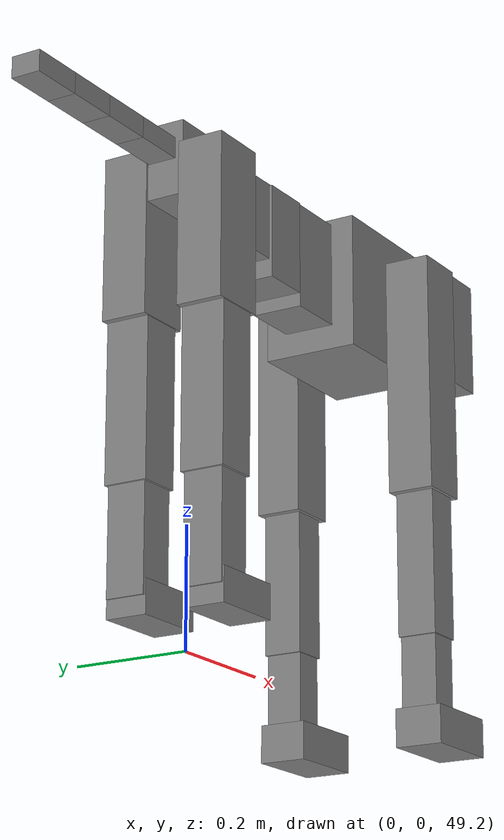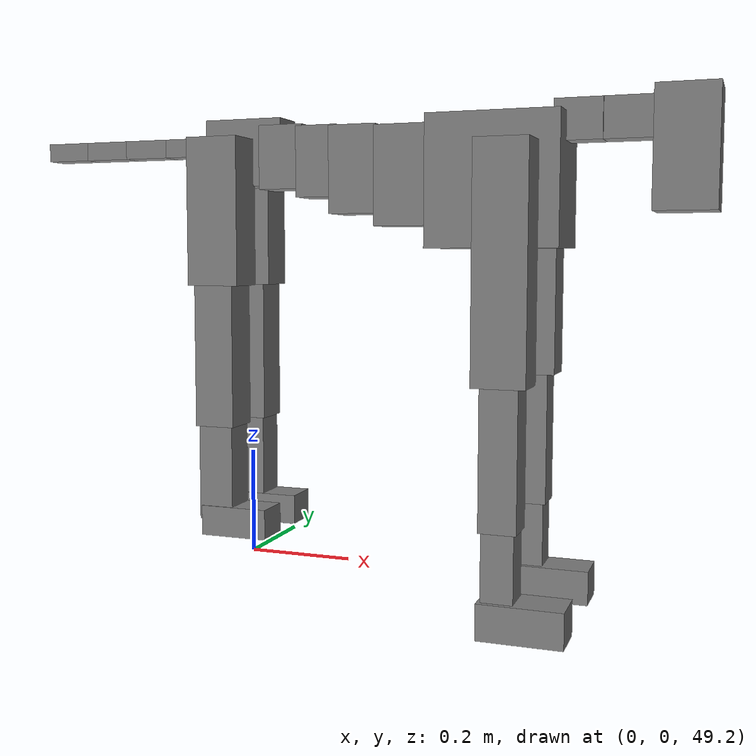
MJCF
<mujoco model="dog">

    <default>
        <joint armature="0.02" stiffness="1" damping="0.2" limited="true" />
        <geom condim="3" friction="1 0.05 0.05" margin="0.01" />
        <motor ctrllimited="true" ctrlrange="-1.0 1.0" forcelimited="true" gear="50" />
    </default>

    <compiler inertiafromgeom="true" angle="radian" />

    <option timestep="0.016" iterations="50" tolerance="1e-10" solver="Newton" jacobian="dense" cone="pyramidal" />

    <size nconmax="20000" njmax="60000" nstack="5000000" />
    <visual>
        <map force="0.1" zfar="30" />
        <rgba haze="0.15 0.25 0.35 1" />
        <quality shadowsize="2048" />
        <global offwidth="800" offheight="800" />
    </visual>

    <asset>
        <texture type="skybox" builtin="gradient" rgb1="0.3 0.5 0.7" rgb2="0 0 0" width="512" height="512" />
        <texture name="texplane" type="2d" builtin="checker" rgb1=".2 .3 .4" rgb2=".1 0.15 0.2" width="512" height="512" mark="cross" markrgb=".8 .8 .8" />
        <texture name="texgeom" type="cube" builtin="flat" mark="cross" width="127" height="1278" rgb1="0.8 0.6 0.4" rgb2="0.8 0.6 0.4" markrgb="1 1 1" random="0.01" />

        <material name="matplane" reflectance="0.3" texture="texplane" texrepeat="1 1" texuniform="true" />
        <material name="matgeom" texture="texgeom" texuniform="true" rgba="0.8 0.6 .4 1" />
    </asset>

    <worldbody>
        <geom name="floor" pos="0 0 0" size="0 0 .25" type="plane" material="matplane" condim="3" />

        <light directional="false" diffuse=".2 .2 .2" specular="0 0 0" pos="0 0 5" dir="0 0 -1" castshadow="false" />
        <light mode="targetbodycom" target="torso" directional="false" diffuse=".8 .8 .8" specular="0.3 0.3 0.3" pos="0 0 4.0" dir="0 0 -1" />

        <body name="root" pos="0 0 50">
            <freejoint name="root_1" />
            <geom type="box" pos="0 0 -0.02" size="0.0774  0.0358  0.063" density="2030" />

            <body name="spine1" pos="0.054 0 0">
                <joint name="spine1_y" axis="0 1 0" range="0 0.7" limited="true" />
                <geom type="box" pos="0.02375 0 -0.03" size="0.04375  0.0375  0.05985" density="2030" />

                <body name="spine2" pos="0.0612 0 0">
                    <joint name="spine2_y" axis="0 1 0" range="-0.15 0.15" limited="true" />
                    <geom type="box" pos="0.03555  0  -0.04" size="0.04055  0.039  0.06615" density="2030" />

                    <body name="spine3" pos="0.0730 0 0">
                        <joint name="spine3_y" axis="0 1 0" range="-0.15 0.15" limited="true" />
                        <geom type="box" pos="0.03555  0  -0.057" size="0.04555  0.0445  0.081" density="2030" />

                        <body name="spine4" pos="0.0780 0 0">
                            <joint name="spine4_y" axis="0 1 0" range="-0.15 0.15" limited="true" />
                            <geom type="box" pos="0.05265  0  -0.07" size="0.05265  0.045  0.09135" density="2030" />

                            <body name="torso" pos="0.1082 0 0">
                                <joint name="torso_y" axis="0 1 0" range="-0.15 0.15" limited="true" />
                                <geom type="box" pos="0.11925  0  -0.085" size="0.11925  0.085  0.11745" density="2030" />

                                <body name="neck1" pos="0.2160  0   0.0180">
                                    <joint name="neck1_y" axis="0 1 0" range="-1.2  -1" limited="true" />
                                    <geom type="box" pos="0.0423  0  0" size="0.0423  0.03  0.036" density="2325" />

                                    <body name="neck2" pos="0.0853  0  0">
                                        <joint name="neck2_y" axis="0 1 0" range="0.1  0" limited="true" />
                                        <geom type="box" pos="0.0423  0  0" size="0.0423  0.03  0.036" density="2325" />

                                        <body name="head" pos="0.0853  0  0">
                                            <joint name="head_y" axis="0 1 0" range="-0.3  -0.2" limited="true" />
                                            <geom type="box" pos="0.0531  0  -0.055" size="0.0531  0.06  0.1044" density="4030" />

                                        </body>
                                    </body>
                                </body>

                                <body name="front_shoulder" pos="0.156  0   -0.0480">
                                    <joint name="front_shoulder_y" axis="0 1 0" range="-1 1.5" limited="true" />
                                    <geom type="box" pos="0 0.13 -0.1816" size="0.0474  0.0405  0.2082" density="1158" />
                                    <geom type="box" pos="0 -0.13 -0.1816" size="0.0474  0.0405  0.2082" density="1158" />

                                    <body name="front_elbow" pos="0  0  -0.3631">
                                        <joint name="front_elbow_y" axis="0 1 0" range="-2 0" limited="true" />
                                        <geom type="box" pos="0 0.13 -0.1374" size="0.0334  0.0342  0.1374" density="1081" />
                                        <geom type="box" pos="0 -0.13 -0.1374" size="0.0334  0.0342  0.1374" density="1081" />

                                        <body name="front_wrist" pos="0  0  -0.2748">
                                            <joint name="front_wrist_y" axis="0 1 0" range="-0.2 0" limited="true" />
                                            <geom type="box" pos="0 0.13 -0.0677" size="0.0287  0.0319  0.0809" density="1664" />
                                            <geom type="box" pos="0 -0.13 -0.0677" size="0.0287  0.0319  0.0809" density="1664" />

                                            <body name="front_finger_end" pos="0  0  -0.1355">
                                                <joint name="front_finger_y" axis="0 1 0" range="-0.4 1" limited="true" />
                                                <geom type="box" pos="0.0415  0.13  -0.0176" size="0.0761  0.0415  0.0326" density="1515" />
                                                <geom type="box" pos="0.0415  -0.13  -0.0176" size="0.0761  0.0415  0.0326" density="1515" />

                                            </body>

                                        </body>
                                    </body>
                                </body>

                            </body>
                        </body>
                    </body>
                </body>
            </body>

            <body name="back_hip" pos="-0.03 0 -0.018">
                <joint name="back_hip_y" axis="0 1 0" range="-1.5 0.3" limited="true" />
                <geom type="box" pos="0 0.07 -0.1153" size="0.0510  0.0400  0.1381" density="1154" />
                <geom type="box" pos="0 -0.07 -0.1153" size="0.0510  0.0400  0.1381" density="1154" />

                <body name="back_knee" pos="0  0  -0.2306">
                    <joint name="back_knee_y" axis="0 1 0" range="0 2.8" limited="true" />
                    <geom type="box" pos="0 0.07 -0.1372" size="0.0386  0.0381  0.1528" density="1227" />
                    <geom type="box" pos="0 -0.07 -0.1372" size="0.0386  0.0381  0.1528" density="1227" />

                    <body name="back_ankle" pos="0  0  -0.2744">
                        <joint name="back_ankle_y" axis="0 1 0" range="-2.2 0" limited="true" />
                        <geom type="box" pos="0 0.07 -0.0923" size="0.0339  0.0339  0.1036" density="1284" />
                        <geom type="box" pos="0 -0.07 -0.0923" size="0.0339  0.0339  0.1036" density="1284" />

                        <body name="back_toe_end" pos="0  0  -0.1846">
                            <joint name="back_toe_y" axis="0 1 0" range="-0.4 1" limited="true" />
                            <geom type="box" pos="0.0360  0.07  -0.0136" size="0.0660  0.0360  0.0286" density="1515" />
                            <geom type="box" pos="0.0360  -0.07  -0.0136" size="0.0660  0.0360  0.0286" density="1515" />

                        </body>
                    </body>
                </body>
            </body>

            <body name="tail1" pos="-0.074 0 -0.006">
                <joint name="tail1_y" axis="0 1 0" range="-0.2 0.2" limited="true" />
                <geom type="box" pos="-0.0536  0  0" size="0.045  0.025  0.0175" density="1587" />

                <body name="tail2" pos="-0.09 0 0">
                    <joint name="tail2_y" axis="0 1 0" range="-0.2 0.2" limited="true" />
                    <geom type="box" pos="-0.0536  0  0" size="0.045  0.025  0.0175" density="1587" />

                    <body name="tail3" pos="-0.09 0 0">
                        <joint name="tail3_y" axis="0 1 0" range="-0.2 0.2" limited="true" />
                        <geom type="box" pos="-0.0536  0  0" size="0.045  0.025  0.0175" density="1587" />

                        <body name="tail4" pos="-0.09 0 0">
                            <joint name="tail4_y" axis="0 1 0" range="-0.2 0.2" limited="true" />
                            <geom type="box" pos="-0.0536  0  0" size="0.045  0.025  0.0175" density="1587" />

                        </body>
                    </body>
                </body>
            </body>
        </body>
    </worldbody>

    <actuator>
        <motor joint="spine1_y" forcerange="-150 150     " />
        <motor joint="spine2_y" forcerange="-150 150     " />
        <motor joint="spine3_y" forcerange="-150 150     " />
        <motor joint="spine4_y" forcerange="-150 150     " />
        <motor joint="torso_y" forcerange="-150 150     " />
        <motor joint="neck1_y" forcerange="-100 100       " />
        <motor joint="neck2_y" forcerange="-100 100       " />
        <motor joint="head_y" forcerange="-150 150       " />
        <motor joint="front_shoulder_y" forcerange="-179.60 190.69" />
        <motor joint="front_elbow_y" forcerange="-178.61 169.83" />
        <motor joint="front_wrist_y" forcerange="-111.15 144.06" />
        <motor joint="front_finger_y" forcerange="-98.11 83.25" />
        <motor joint="back_hip_y" forcerange="-344.71 388.17" />
        <motor joint="back_knee_y" forcerange="-384.64 369.25" />
        <motor joint="back_angle_y" forcerange="-219.95 222.53" />
        <motor joint="back_toe_y" forcerange="-97.85 110.08" />
        <motor joint="tail1_y" forcerange="-50 50     " />
        <motor joint="tail2_y" forcerange="-50 50     " />
        <motor joint="tail3_y" forcerange="-50 50     " />
        <motor joint="tail4_y" forcerange="-50 50     " />
    </actuator>
</mujoco>
